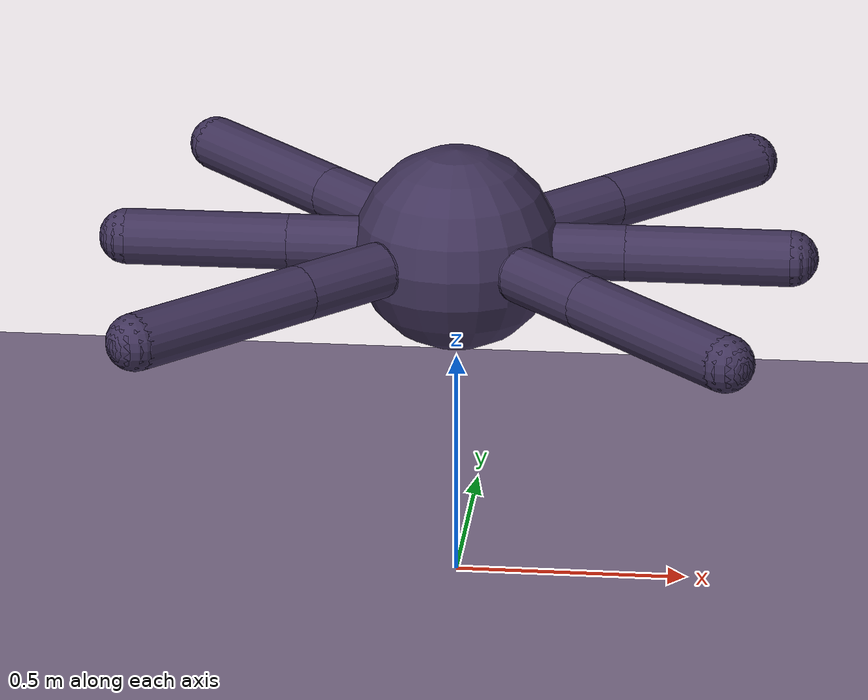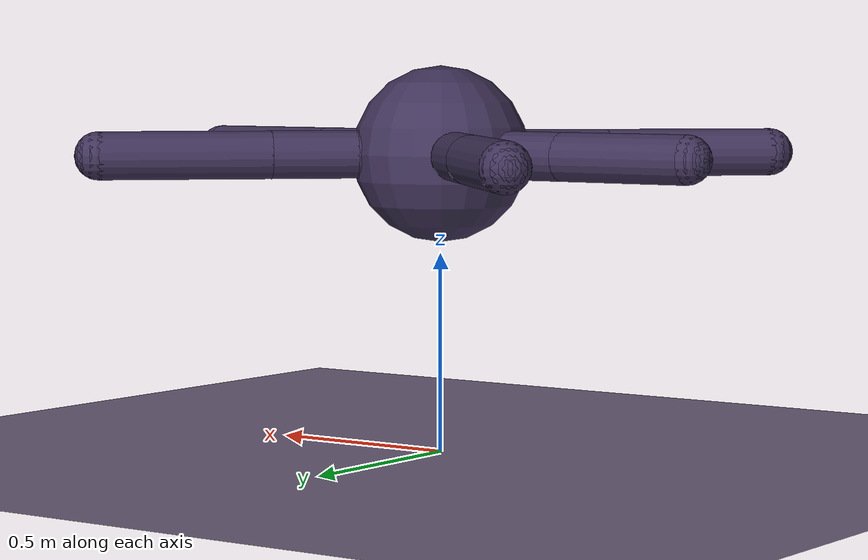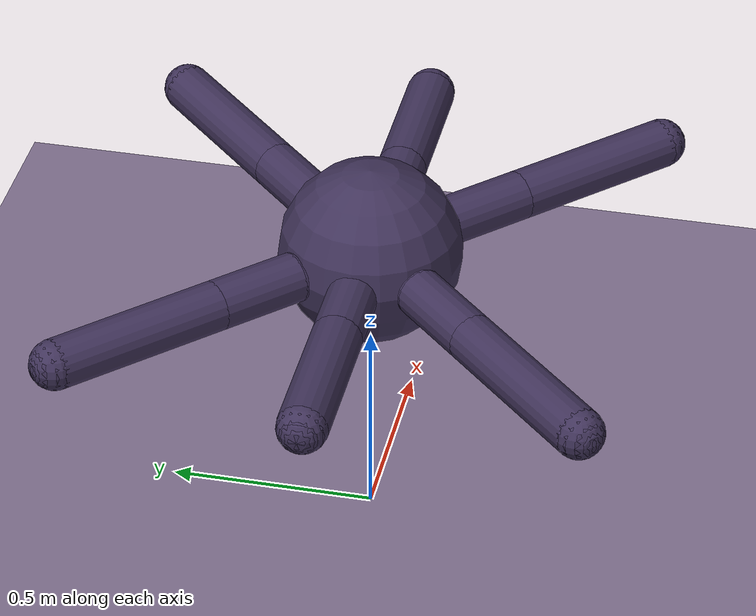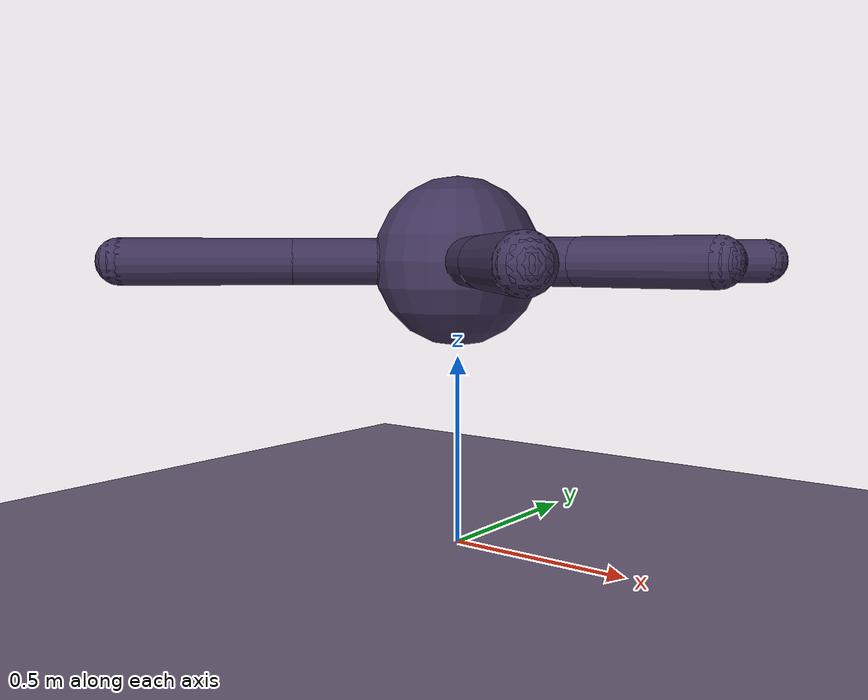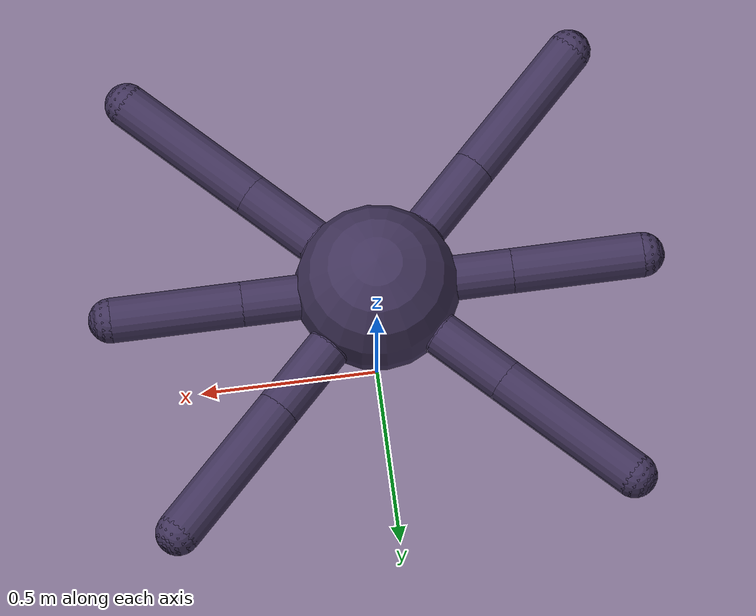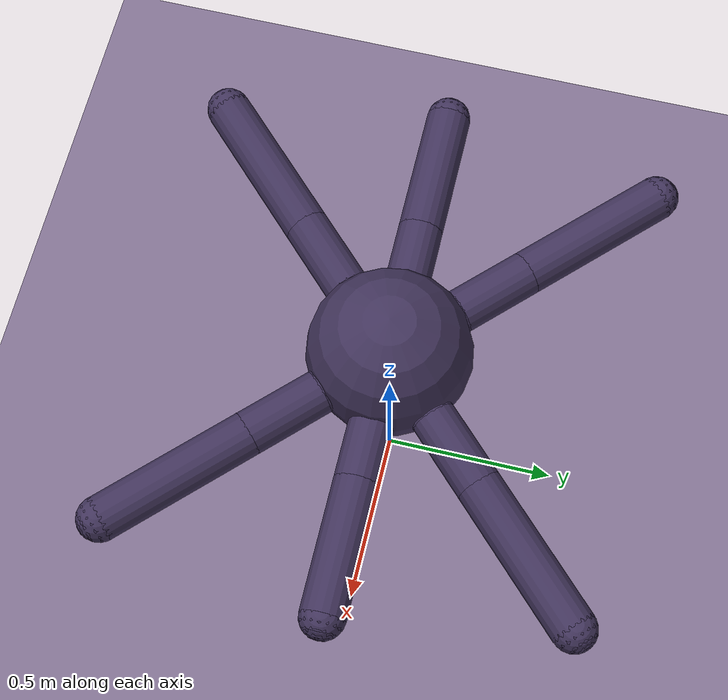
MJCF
<mujoco model="spider">
  <compiler angle="degree" coordinate="local" inertiafromgeom="true"/>
  <option timestep="0.01" iterations="4" ls_iterations="6"/>
  <custom>
    <!-- brax custom params -->
    <numeric data="0.0 0.0 0.55 1.0 0.0 0.0 0.0 0.0 1.0 0.0 -1.0 0.0 -1.0 0.0 1.0 0.0 -1.0 0.0 1.0" name="init_qpos"/>
    <numeric data="1000" name="constraint_limit_stiffness"/>
    <numeric data="4000" name="constraint_stiffness"/>
    <numeric data="10" name="constraint_ang_damping"/>
    <numeric data="20" name="constraint_vel_damping"/>
    <numeric data="0.5" name="joint_scale_pos"/>
    <numeric data="0.2" name="joint_scale_ang"/>
    <numeric data="0.0" name="ang_damping"/>
    <numeric data="1" name="spring_mass_scale"/>
    <numeric data="1" name="spring_inertia_scale"/>
    <numeric data="15" name="solver_maxls"/>
  </custom>
  <default>
    <joint armature="1" damping="1" limited="true"/>
    <geom contype="0" conaffinity="0" condim="3" density="5.0" friction="1 0.5 0.5"
     rgba="0.25 0.2 0.35 1.0"/>
    <site size="0.032" type="sphere"/>
  </default>
  <asset>
    <texture builtin="gradient" height="100" rgb1=".35 .25 .45" rgb2="0.08 0.06 0.12" type="skybox" width="100"/>
    <texture builtin="flat" height="1278" mark="cross" markrgb="1 1 1" name="texgeom" random="0.01" rgb1="0.5 0.4 0.6" rgb2="0.5 0.4 0.6" type="cube" width="127"/>
    <texture builtin="checker" height="100" name="texplane" rgb1="0.52 0.46 0.58" rgb2="0.46 0.40 0.52" type="2d" width="100"/>
    <material name="MatPlane" reflectance="0.15" shininess="0.1" specular="0.1" texrepeat="60 60" texture="texplane"/>
    <material name="geom" texture="texgeom" texuniform="true"/>
  </asset>
  <worldbody>
    <light cutoff="100" diffuse="1 1 1" dir="-0 0 -1.3" directional="true" exponent="1" pos="0 0 1.3" specular=".1 .1 .1"/>
    <geom conaffinity="1" condim="3" material="MatPlane" name="floor" pos="0 0 0" size="40 40 40" type="plane" rgba="0.5 0.5 0.5 1.0"/>

  <camera name="fixedfar" pos="0 -4 2" zaxis="0 -1 0.5" mode="trackcom"/>
  <body name="torso" pos="0 0 0.75">
      <site name="torso" rgba="1 0 0 .1"/>
      <camera name="vision" pos="0 0 0.3" xyaxes="0 -1 0 .4 0 1" fovy="90"/>
      <camera name="track" mode="trackcom" pos="0 -3 0.3" xyaxes="1 0 0 0 0 1"/>
      <geom name="torso_geom" pos="0 0 0" size="0.22" type="sphere"/>
      <joint armature="0" damping="0" limited="false" margin="0.01" name="root" pos="0 0 0" type="free"/>

      <!-- Front-left leg (45 degrees) -->
      <body name="front_left_leg" pos="0 0 0">
        <geom fromto="0.0 0.0 0.0 0.15 0.15 0.0" name="aux_fl_geom" size="0.06" type="capsule"/>
        <body name="aux_fl" pos="0.15 0.15 0">
          <joint axis="0 0 1" name="hip_fl" pos="0.0 0.0 0.0" range="-30 30" type="hinge"/>
          <geom fromto="0.0 0.0 0.0 0.15 0.15 0.0" name="leg_fl_geom" size="0.06" type="capsule"/>
          <body pos="0.15 0.15 0">
            <joint axis="-1 1 0" name="ankle_fl" pos="0.0 0.0 0.0" range="30 70" type="hinge"/>
            <geom fromto="0.0 0.0 0.0 0.3 0.3 0.0" name="ankle_fl_geom" size="0.06" type="capsule"/>
            <geom name="foot_fl_geom" contype="1" pos="0.3 0.3 0" size="0.06" type="sphere" mass="0"/>
            <!-- Violation indicator (visual only, initially transparent) -->
            <geom name="indicator_fl" contype="0" conaffinity="0" pos="0.3 0.3 0" size="0.09" type="sphere" rgba="1 0 0 0" mass="0"/>
          </body>
        </body>
      </body>

      <!-- Front-right leg (45 degrees, mirrored) -->
      <body name="front_right_leg" pos="0 0 0">
        <geom fromto="0.0 0.0 0.0 -0.15 0.15 0.0" name="aux_fr_geom" size="0.06" type="capsule"/>
        <body name="aux_fr" pos="-0.15 0.15 0">
          <joint axis="0 0 1" name="hip_fr" pos="0.0 0.0 0.0" range="-30 30" type="hinge"/>
          <geom fromto="0.0 0.0 0.0 -0.15 0.15 0.0" name="leg_fr_geom" size="0.06" type="capsule"/>
          <body pos="-0.15 0.15 0">
            <joint axis="1 1 0" name="ankle_fr" pos="0.0 0.0 0.0" range="-70 -30" type="hinge"/>
            <geom fromto="0.0 0.0 0.0 -0.3 0.3 0.0" name="ankle_fr_geom" size="0.06" type="capsule"/>
            <geom name="foot_fr_geom" contype="1" pos="-0.3 0.3 0" size="0.06" type="sphere" mass="0"/>
            <geom name="indicator_fr" contype="0" conaffinity="0" pos="-0.3 0.3 0" size="0.09" type="sphere" rgba="1 0 0 0" mass="0"/>
          </body>
        </body>
      </body>

      <!-- Mid-left leg (90 degrees - straight out) -->
      <body name="mid_left_leg" pos="0 0 0">
        <geom fromto="0.0 0.0 0.0 0.18 0.0 0.0" name="aux_ml_geom" size="0.06" type="capsule"/>
        <body name="aux_ml" pos="0.18 0.0 0">
          <joint axis="0 0 1" name="hip_ml" pos="0.0 0.0 0.0" range="-30 30" type="hinge"/>
          <geom fromto="0.0 0.0 0.0 0.18 0.0 0.0" name="leg_ml_geom" size="0.06" type="capsule"/>
          <body pos="0.18 0.0 0">
            <joint axis="0 1 0" name="ankle_ml" pos="0.0 0.0 0.0" range="30 70" type="hinge"/>
            <geom fromto="0.0 0.0 0.0 0.35 0.0 0.0" name="ankle_ml_geom" size="0.06" type="capsule"/>
            <geom name="foot_ml_geom" contype="1" pos="0.35 0.0 0" size="0.06" type="sphere" mass="0"/>
            <geom name="indicator_ml" contype="0" conaffinity="0" pos="0.35 0.0 0" size="0.09" type="sphere" rgba="1 0 0 0" mass="0"/>
          </body>
        </body>
      </body>

      <!-- Mid-right leg (90 degrees - straight out, mirrored) -->
      <body name="mid_right_leg" pos="0 0 0">
        <geom fromto="0.0 0.0 0.0 -0.18 0.0 0.0" name="aux_mr_geom" size="0.06" type="capsule"/>
        <body name="aux_mr" pos="-0.18 0.0 0">
          <joint axis="0 0 1" name="hip_mr" pos="0.0 0.0 0.0" range="-30 30" type="hinge"/>
          <geom fromto="0.0 0.0 0.0 -0.18 0.0 0.0" name="leg_mr_geom" size="0.06" type="capsule"/>
          <body pos="-0.18 0.0 0">
            <joint axis="0 1 0" name="ankle_mr" pos="0.0 0.0 0.0" range="-70 -30" type="hinge"/>
            <geom fromto="0.0 0.0 0.0 -0.35 0.0 0.0" name="ankle_mr_geom" size="0.06" type="capsule"/>
            <geom name="foot_mr_geom" contype="1" pos="-0.35 0.0 0" size="0.06" type="sphere" mass="0"/>
            <geom name="indicator_mr" contype="0" conaffinity="0" pos="-0.35 0.0 0" size="0.09" type="sphere" rgba="1 0 0 0" mass="0"/>
          </body>
        </body>
      </body>

      <!-- Back-left leg (135 degrees) -->
      <body name="back_left_leg" pos="0 0 0">
        <geom fromto="0.0 0.0 0.0 0.15 -0.15 0.0" name="aux_bl_geom" size="0.06" type="capsule"/>
        <body name="aux_bl" pos="0.15 -0.15 0">
          <joint axis="0 0 1" name="hip_bl" pos="0.0 0.0 0.0" range="-30 30" type="hinge"/>
          <geom fromto="0.0 0.0 0.0 0.15 -0.15 0.0" name="leg_bl_geom" size="0.06" type="capsule"/>
          <body pos="0.15 -0.15 0">
            <joint axis="1 1 0" name="ankle_bl" pos="0.0 0.0 0.0" range="30 70" type="hinge"/>
            <geom fromto="0.0 0.0 0.0 0.3 -0.3 0.0" name="ankle_bl_geom" size="0.06" type="capsule"/>
            <geom name="foot_bl_geom" contype="1" pos="0.3 -0.3 0" size="0.06" type="sphere" mass="0"/>
            <geom name="indicator_bl" contype="0" conaffinity="0" pos="0.3 -0.3 0" size="0.09" type="sphere" rgba="1 0 0 0" mass="0"/>
          </body>
        </body>
      </body>

      <!-- Back-right leg (135 degrees, mirrored) -->
      <body name="back_right_leg" pos="0 0 0">
        <geom fromto="0.0 0.0 0.0 -0.15 -0.15 0.0" name="aux_br_geom" size="0.06" type="capsule"/>
        <body name="aux_br" pos="-0.15 -0.15 0">
          <joint axis="0 0 1" name="hip_br" pos="0.0 0.0 0.0" range="-30 30" type="hinge"/>
          <geom fromto="0.0 0.0 0.0 -0.15 -0.15 0.0" name="leg_br_geom" size="0.06" type="capsule"/>
          <body pos="-0.15 -0.15 0">
            <joint axis="-1 1 0" name="ankle_br" pos="0.0 0.0 0.0" range="-70 -30" type="hinge"/>
            <geom fromto="0.0 0.0 0.0 -0.3 -0.3 0.0" name="ankle_br_geom" size="0.06" type="capsule"/>
            <geom name="foot_br_geom" contype="1" pos="-0.3 -0.3 0" size="0.06" type="sphere" mass="0"/>
            <geom name="indicator_br" contype="0" conaffinity="0" pos="-0.3 -0.3 0" size="0.09" type="sphere" rgba="1 0 0 0" mass="0"/>
          </body>
        </body>
      </body>

    </body>
  </worldbody>
  <sensor>
    <!-- Used for observation -->
    <accelerometer site="torso" name="accelerometer"/>
    <velocimeter site="torso" name="velocimeter"/>
    <gyro site="torso" name="gyro"/>
    <magnetometer site="torso" name="magnetometer"/>

    <!-- Used for intrinsic constraints -->
    <subtreecom body="torso" name="subtreecom"/>
    <subtreelinvel body="torso" name="subtreelinvel"/>
    <subtreeangmom body="torso" name="subtreeangmom"/>
  </sensor>
  <actuator>
    <!-- Front-left -->
    <motor ctrllimited="true" ctrlrange="-1.0 1.0" joint="hip_fl" gear="150"/>
    <motor ctrllimited="true" ctrlrange="-1.0 1.0" joint="ankle_fl" gear="150"/>
    <!-- Front-right -->
    <motor ctrllimited="true" ctrlrange="-1.0 1.0" joint="hip_fr" gear="150"/>
    <motor ctrllimited="true" ctrlrange="-1.0 1.0" joint="ankle_fr" gear="150"/>
    <!-- Mid-left -->
    <motor ctrllimited="true" ctrlrange="-1.0 1.0" joint="hip_ml" gear="150"/>
    <motor ctrllimited="true" ctrlrange="-1.0 1.0" joint="ankle_ml" gear="150"/>
    <!-- Mid-right -->
    <motor ctrllimited="true" ctrlrange="-1.0 1.0" joint="hip_mr" gear="150"/>
    <motor ctrllimited="true" ctrlrange="-1.0 1.0" joint="ankle_mr" gear="150"/>
    <!-- Back-left -->
    <motor ctrllimited="true" ctrlrange="-1.0 1.0" joint="hip_bl" gear="150"/>
    <motor ctrllimited="true" ctrlrange="-1.0 1.0" joint="ankle_bl" gear="150"/>
    <!-- Back-right -->
    <motor ctrllimited="true" ctrlrange="-1.0 1.0" joint="hip_br" gear="150"/>
    <motor ctrllimited="true" ctrlrange="-1.0 1.0" joint="ankle_br" gear="150"/>
  </actuator>
</mujoco>
